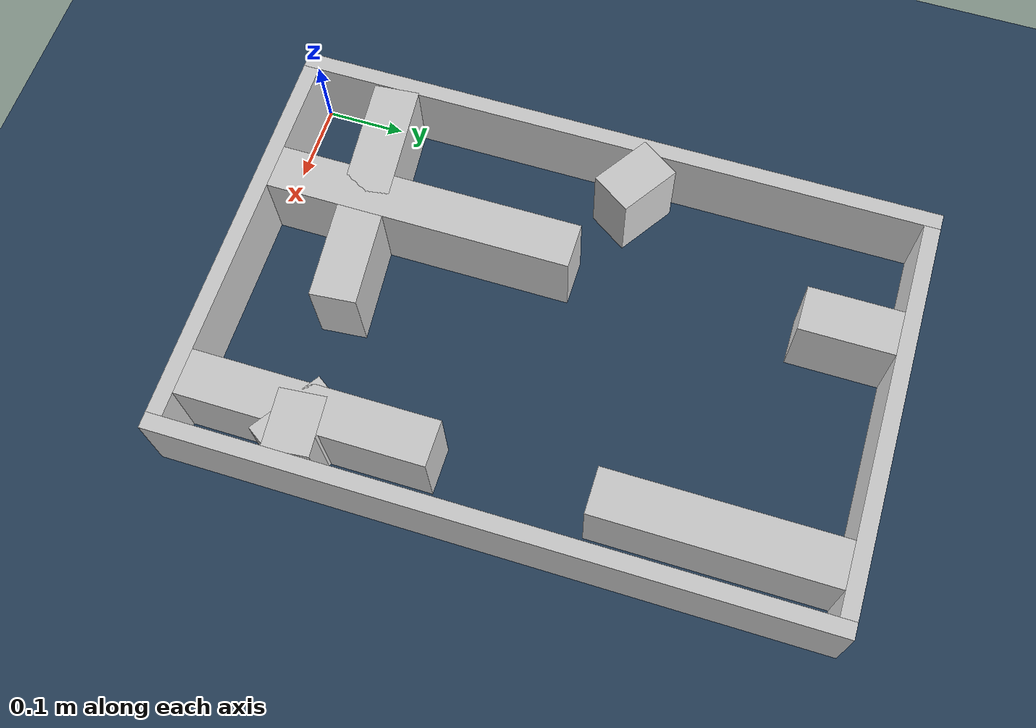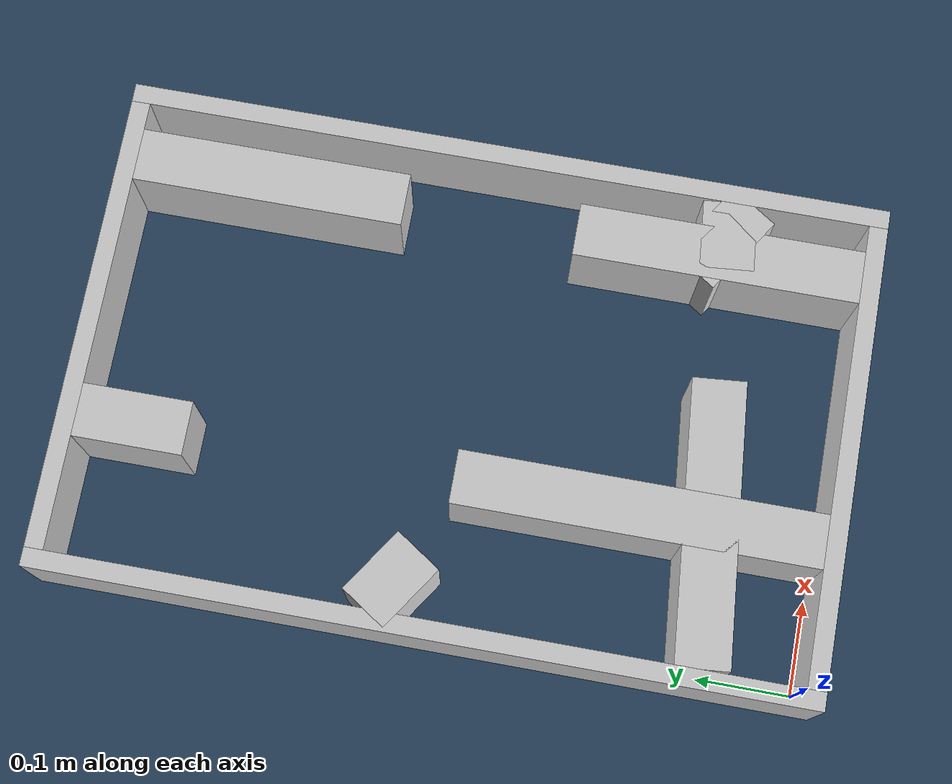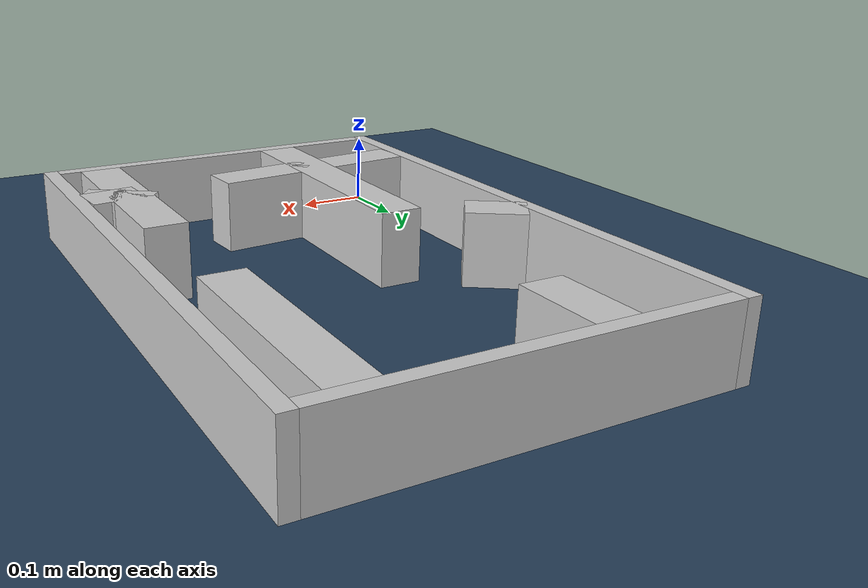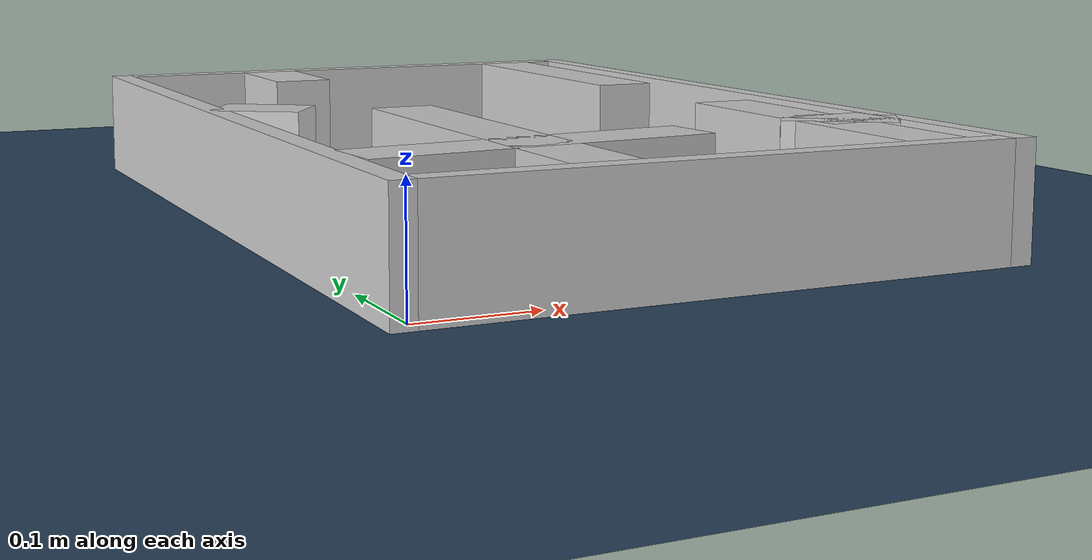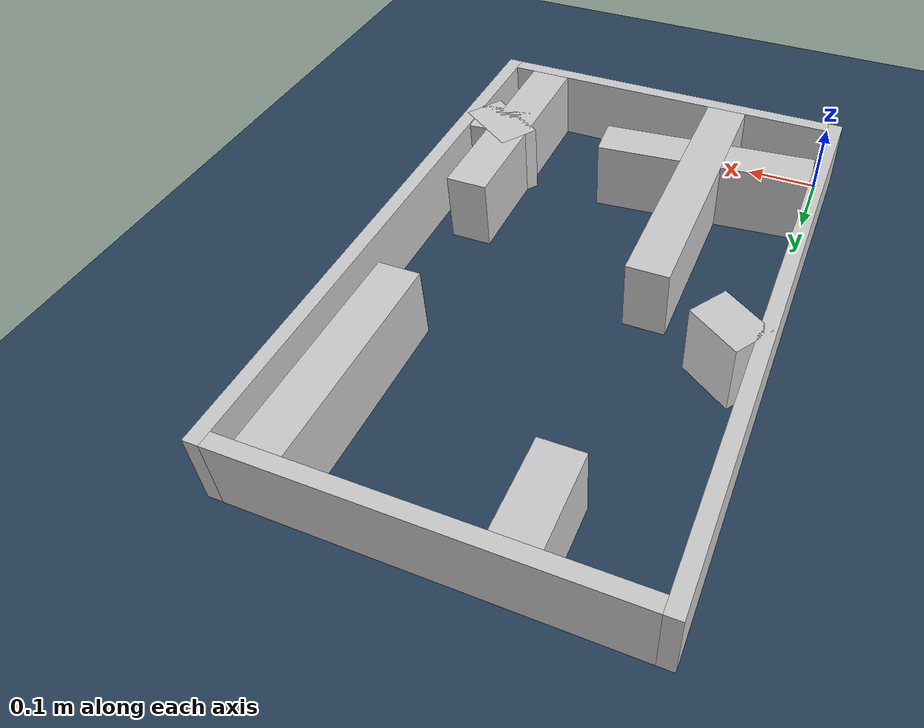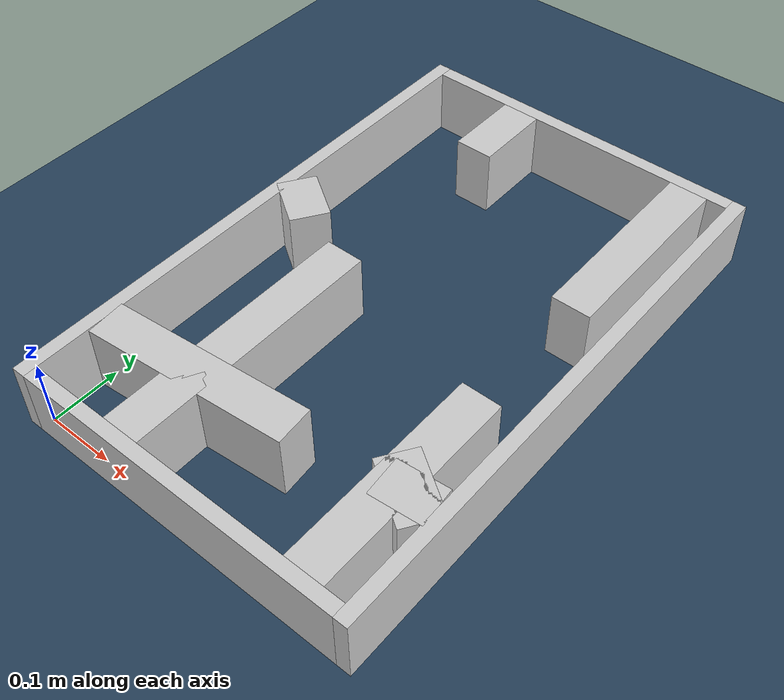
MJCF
<?xml version="1.0" ?>
<mujoco model="generated_real_template">
  <compiler angle="degree"/>
  <option timestep="0.002" integrator="implicitfast" iterations="100" cone="elliptic"/>
  <default>
    <geom density="1"/>
  </default>
  <asset>
    <texture builtin="gradient" height="3072" rgb1="0.3 0.5 0.7" rgb2="0 0 0" type="skybox" width="512"/>
    <texture builtin="checker" height="300" mark="edge" markrgb="0.8 0.8 0.8" name="groundplane" rgb1="0.2 0.3 0.4" rgb2="0.1 0.2 0.3" type="2d" width="300"/>
    <material name="groundplane" reflectance="0.2" texrepeat="5 5" texture="groundplane" texuniform="true"/>
  </asset>
  <worldbody>
    <light dir="0 0 -1" directional="true" pos="0 0 1.5"/>
    <geom name="floor" type="plane" condim="4" friction="0.5 0.005 0.001" material="groundplane" size="0 0 0.05"/>
    <body name="walls">
      <geom name="wall_boundary_left" type="box" condim="4" friction="1.0 0.005 0.0001" rgba="0.8 0.8 0.8 1" pos="-0.010000 0.387500 0.050000" euler="0 0 0.000000" size="0.010000 0.407500 0.050000"/>
      <geom name="wall_boundary_right" type="box" condim="4" friction="1.0 0.005 0.0001" rgba="0.8 0.8 0.8 1" pos="0.500000 0.387500 0.050000" euler="0 0 0.000000" size="0.010000 0.407500 0.050000"/>
      <geom name="wall_boundary_bottom" type="box" condim="4" friction="1.0 0.005 0.0001" rgba="0.8 0.8 0.8 1" pos="0.245000 -0.010000 0.050000" euler="0 0 0.000000" size="0.245000 0.010000 0.050000"/>
      <geom name="wall_boundary_top" type="box" condim="4" friction="1.0 0.005 0.0001" rgba="0.8 0.8 0.8 1" pos="0.245000 0.785000 0.050000" euler="0 0 0.000000" size="0.245000 0.010000 0.050000"/>
      <geom name="wall_inner_1_1" type="box" condim="4" friction="1.0 0.005 0.0001" rgba="0.8 0.8 0.8 1" pos="0.453273 0.144280 0.050000" euler="0 0 -175.019634" size="0.036866 0.028500 0.050000"/>
      <geom name="wall_inner_1_2" type="box" condim="4" friction="1.0 0.005 0.0001" rgba="0.8 0.8 0.8 1" pos="0.148523 0.117723 0.050000" euler="0 0 -175.019634" size="0.149086 0.028500 0.050000"/>
      <geom name="wall_inner_2_1" type="box" condim="4" friction="1.0 0.005 0.0001" rgba="0.8 0.8 0.8 1" pos="0.449653 0.148785 0.050000" euler="0 0 146.388810" size="0.048447 0.028500 0.050000"/>
      <geom name="wall_inner_2_2" type="box" condim="4" friction="1.0 0.005 0.0001" rgba="0.8 0.8 0.8 1" pos="0.033531 0.425373 0.050000" euler="0 0 146.388810" size="0.040263 0.028500 0.050000"/>
      <geom name="wall_inner_3_1" type="box" condim="4" friction="1.0 0.005 0.0001" rgba="0.8 0.8 0.8 1" pos="0.432122 0.151348 0.050000" euler="0 0 90.000000" size="0.151348 0.028500 0.050000"/>
      <geom name="wall_inner_3_2" type="box" condim="4" friction="1.0 0.005 0.0001" rgba="0.8 0.8 0.8 1" pos="0.432122 0.630230 0.050000" euler="0 0 90.000000" size="0.144770 0.028500 0.050000"/>
      <geom name="wall_inner_4_1" type="box" condim="4" friction="1.0 0.005 0.0001" rgba="0.8 0.8 0.8 1" pos="0.148462 0.191155 0.050000" euler="0 0 90.000000" size="0.191155 0.028500 0.050000"/>
      <geom name="wall_inner_4_2" type="box" condim="4" friction="1.0 0.005 0.0001" rgba="0.8 0.8 0.8 1" pos="0.148462 0.717042 0.050000" euler="0 0 90.000000" size="0.057958 0.028500 0.050000"/>
    </body>
  </worldbody>
</mujoco>
